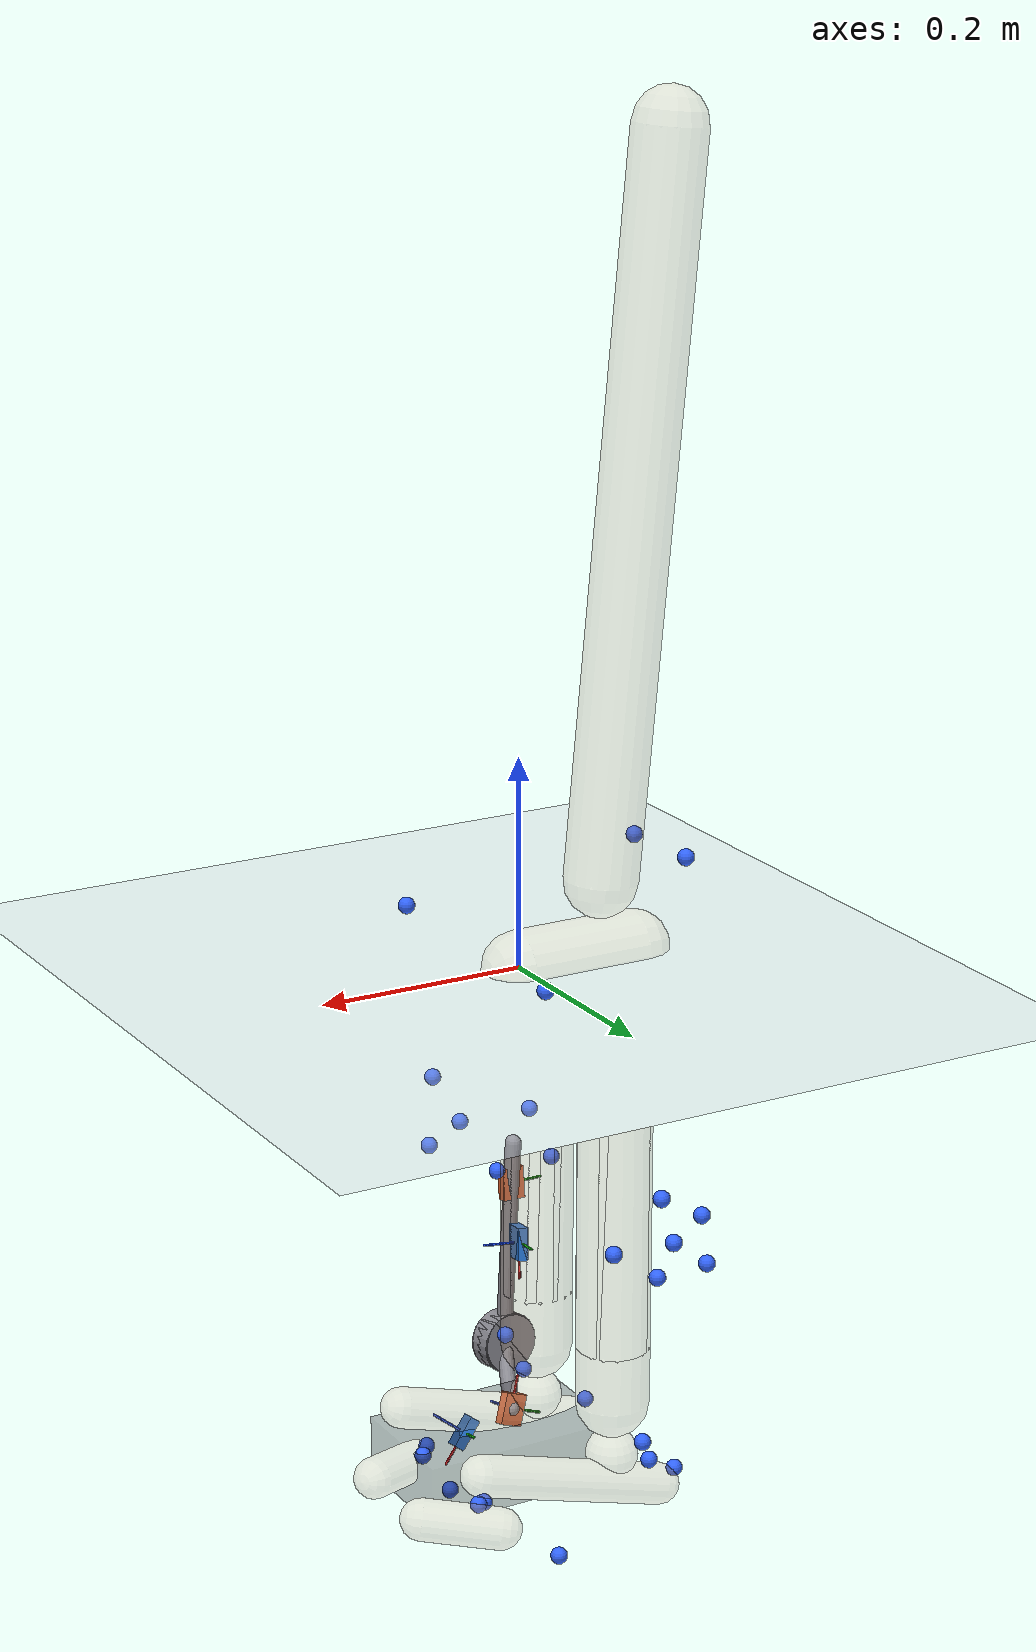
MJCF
<mujoco model="AB28">
  <compiler angle="radian" autolimits="true"/>
  <option timestep="0.005" gravity="0 0 -9.81"><flag contact="disable"/></option>
  <visual><global offwidth="1600" offheight="1200"/>
    <headlight ambient="0.55 0.55 0.55" diffuse="0.6 0.6 0.6"/></visual>
  <default><joint limited="false" damping="0"/><geom contype="0" conaffinity="0"/></default>
  <asset>
    <texture name="grid" type="2d" builtin="checker" rgb1="0.75 0.77 0.8" rgb2="0.85 0.87 0.9" width="512" height="512"/>
    <material name="grid" texture="grid" texrepeat="2 2" texuniform="true"/>
    <material name="skin" rgba="0.85 0.72 0.62 0.28"/>
  </asset>
  <worldbody>
    <light pos="0 0 4" dir="0 0 -1"/>
    <geom name="floor" type="plane" size="0 0 0.05" material="grid"/>
    <body name="pelvis" pos="0 0 0" quat="1 0 0 0">
      <joint name="pelvis_tx" type="slide" axis="1 0 0"/>
      <joint name="pelvis_ty" type="slide" axis="0 0 1"/>
      <joint name="pelvis_tz" type="slide" axis="0 -1 0"/>
      <joint name="pelvis_tilt" type="hinge" axis="0 -1 0"/>
      <joint name="pelvis_list" type="hinge" axis="1 0 0"/>
      <joint name="pelvis_rotation" type="hinge" axis="0 0 1"/>
      <inertial pos="-0.060459257 0 0" mass="10.3627" diaginertia="0.10362728 0.10362728 0.10362728"/>
      <geom type="capsule" fromto="0 0 0 -0.12091851 0 0" size="0.035" material="skin" mass="0"/>
      <site name="m_R_ASIS" pos="0.045494948 -0.13175383 0.027740392" size="0.008" rgba="0.2 0.4 1 1" group="2"/>
      <site name="m_L_ASIS" pos="0.046324617 0.12866539 0.028376879" size="0.008" rgba="0.2 0.4 1 1" group="2"/>
      <site name="m_L_PSIS" pos="-0.1499783 0.044557022 0.094452303" size="0.008" rgba="0.2 0.4 1 1" group="2"/>
      <site name="m_R_PSIS" pos="-0.14623649 -0.040033967 0.092877618" size="0.008" rgba="0.2 0.4 1 1" group="2"/>
      <body name="femur_r" pos="-0.060459257 -0.071405204 -0.056525557" quat="1 0 0 0">
        <joint name="hip_flexion_r" type="hinge" axis="0 -1 0"/>
        <joint name="hip_adduction_r" type="hinge" axis="1 0 0"/>
        <joint name="hip_rotation_r" type="hinge" axis="0 0 1"/>
        <inertial pos="0 0 -0.15340206" mass="8.18442" diaginertia="0.081844173 0.081844173 0.081844173"/>
        <geom type="capsule" fromto="0 0 0 0 0 -0.30680412" size="0.035" material="skin" mass="0"/>
        <site name="m_R_Thigh_Upper" pos="0.05776982 -0.1007557 -0.11153443" size="0.008" rgba="0.2 0.4 1 1" group="2"/>
        <site name="m_R_Thigh_Front" pos="0.082450817 -0.062730026 -0.16361164" size="0.008" rgba="0.2 0.4 1 1" group="2"/>
        <site name="m_R_Thigh_Rear" pos="0.032760071 -0.092161246 -0.15989025" size="0.008" rgba="0.2 0.4 1 1" group="2"/>
        <site name="m_R_Knee_Lat" pos="0.0043800552 -0.05269609 -0.37766919" size="0.008" rgba="0.2 0.4 1 1" group="2"/>
        <body name="tibia_r" pos="0 0 0" quat="1 0 0 0">
<geom name="gt_shank_axis_x" type="capsule" size="0.0012" fromto="0.02470 0.00950 -0.24910 0.02765 0.01607 -0.28335" rgba="1 0.1 0.1 1" contype="0" conaffinity="0" mass="0"/>
<geom name="gt_shank_axis_y" type="capsule" size="0.0012" fromto="0.02470 0.00950 -0.24910 0.03015 0.04337 -0.24214" rgba="0.1 0.8 0.1 1" contype="0" conaffinity="0" mass="0"/>
<geom name="gt_shank_axis_z" type="capsule" size="0.0012" fromto="0.02470 0.00950 -0.24910 0.05915 0.00358 -0.24727" rgba="0.1 0.3 1 1" contype="0" conaffinity="0" mass="0"/>
<geom name="exo_shank_axis_x" type="capsule" size="0.0012" fromto="-0.04013 -0.12007 -0.25032 -0.04116 -0.12578 -0.21580" rgba="1 0.1 0.1 1" contype="0" conaffinity="0" mass="0"/>
<geom name="exo_shank_axis_y" type="capsule" size="0.0012" fromto="-0.04013 -0.12007 -0.25032 -0.07504 -0.12220 -0.25172" rgba="0.1 0.8 0.1 1" contype="0" conaffinity="0" mass="0"/>
<geom name="exo_shank_axis_z" type="capsule" size="0.0012" fromto="-0.04013 -0.12007 -0.25032 -0.03780 -0.15453 -0.25596" rgba="0.1 0.3 1 1" contype="0" conaffinity="0" mass="0"/>
<geom name="encoder_shank" type="cylinder" size="0.03 0.012" fromto="-0.02892 -0.12932 -0.41961 -0.03108 -0.10548 -0.41779" rgba="0.55 0.55 0.58 1" contype="0" conaffinity="0" mass="0"/>
<geom name="strut_shank" type="capsule" size="0.008" fromto="-0.03000 -0.11740 -0.41870 -0.04266 -0.12073 -0.20822" rgba="0.55 0.55 0.58 1" contype="0" conaffinity="0" mass="0"/>
          <joint name="knee_r_translation1" type="slide" axis="1 0 0"/>
          <joint name="knee_r_translation2" type="slide" axis="0 0 1"/>
          <joint name="knee_angle_r" type="hinge" axis="0 -1 0"/>
          <inertial pos="0 0 -0.18179033" mass="3.26228" diaginertia="0.032622753 0.032622753 0.032622753"/>
          <geom type="capsule" fromto="0 0 0 0 0 -0.36358066" size="0.035" material="skin" mass="0"/>
          <site name="m_R_Shank_Upper" pos="-0.038563113 -0.081535494 -0.15673286" size="0.008" rgba="0.2 0.4 1 1" group="2"/>
          <site name="m_R_Shank_Front" pos="0.006359711 -0.065851534 -0.20740432" size="0.008" rgba="0.2 0.4 1 1" group="2"/>
          <site name="m_R_Shank_Rear" pos="-0.056847113 -0.070249825 -0.20714992" size="0.008" rgba="0.2 0.4 1 1" group="2"/>
          <site name="m_R_Ankle_Lat" pos="-0.012361262 -0.045905728 -0.41584314" size="0.008" rgba="0.2 0.4 1 1" group="2"/>
          <site name="gt_shank_imu" type="box" size="0.016 0.012 0.005" pos="0.0247 0.0095 -0.2491" quat="0.72532266 0.12686786 0.67652855 0.010986224" rgba="0.16 0.47 0.84 1" group="1"/>
          <site name="exo_shank_imu" type="box" size="0.016 0.012 0.005" pos="-0.040129 -0.120067 -0.250319" quat="0.43257155 0.54598076 -0.53146482 0.4820083" rgba="0.92 0.41 0.20 1" group="1"/>
          <body name="talus_r" pos="0 0 -0.41869224" quat="1 0 0 0">
            <joint name="ankle_angle_r" type="hinge" axis="-0.10501355 -0.97912632 -0.17402245"/>
            <inertial pos="0 0 0" mass="0.0879912" diaginertia="0.00087991241 0.00087991241 0.00087991241"/>
            <geom type="sphere" size="0.025" material="skin" mass="0"/>
            <body name="calcn_r" pos="-0.047487489 -0.0077117268 -0.040846836" quat="1 0 0 0">
<geom name="gt_foot_axis_x" type="capsule" size="0.0012" fromto="0.12560 0.00420 0.01630 0.14772 0.00818 -0.01053" rgba="1 0.1 0.1 1" contype="0" conaffinity="0" mass="0"/>
<geom name="gt_foot_axis_y" type="capsule" size="0.0012" fromto="0.12560 0.00420 0.01630 0.13262 0.03680 0.02693" rgba="0.1 0.8 0.1 1" contype="0" conaffinity="0" mass="0"/>
<geom name="gt_foot_axis_z" type="capsule" size="0.0012" fromto="0.12560 0.00420 0.01630 0.15180 -0.00790 0.03611" rgba="0.1 0.3 1 1" contype="0" conaffinity="0" mass="0"/>
<geom name="exo_foot_axis_x" type="capsule" size="0.0012" fromto="0.03626 -0.06086 -0.00941 0.02442 -0.06777 0.02280" rgba="1 0.1 0.1 1" contype="0" conaffinity="0" mass="0"/>
<geom name="exo_foot_axis_y" type="capsule" size="0.0012" fromto="0.03626 -0.06086 -0.00941 0.00349 -0.06193 -0.02167" rgba="0.1 0.8 0.1 1" contype="0" conaffinity="0" mass="0"/>
<geom name="exo_foot_axis_z" type="capsule" size="0.0012" fromto="0.03626 -0.06086 -0.00941 0.03966 -0.09515 -0.01551" rgba="0.1 0.3 1 1" contype="0" conaffinity="0" mass="0"/>
<geom name="encoder_foot" type="cylinder" size="0.03 0.012" fromto="0.01920 -0.12138 0.03938 0.01560 -0.09782 0.04222" rgba="0.55 0.55 0.58 1" contype="0" conaffinity="0" mass="0"/>
<geom name="strut_foot" type="capsule" size="0.008" fromto="0.01740 -0.10960 0.04080 0.03626 -0.06086 -0.00941" rgba="0.55 0.55 0.58 1" contype="0" conaffinity="0" mass="0"/>
<geom name="shoe" type="box" pos="0.09116 -0.00256 -0.01182" size="0.09965 0.06334 0.03000" rgba="0.15 0.15 0.18 0.35" contype="0" conaffinity="0" mass="0"/>
              <joint name="subtalar_angle_r" type="hinge" axis="0.78717961 0.12094949 0.60474746"/>
              <inertial pos="0.096134135 0 0.028840241" mass="1.09989" diaginertia="0.010998905 0.010998905 0.010998905"/>
              <geom type="capsule" fromto="0 0 0 0.19226827 0 0.057680481" size="0.02" material="skin" mass="0"/>
              <site name="m_R_Heel" pos="-0.01549349 -0.004412373 0.013531303" size="0.008" rgba="0.2 0.4 1 1" group="2"/>
              <site name="m_R_Toe_Lat" pos="0.13555577 -0.054048505 -0.02182151" size="0.008" rgba="0.2 0.4 1 1" group="2"/>
              <site name="m_R_Toe_Med" pos="0.16766697 0.052636777 -0.012152741" size="0.008" rgba="0.2 0.4 1 1" group="2"/>
              <site name="m_R_Toe_Tip" pos="0.18080904 0.022724583 0.013912831" size="0.008" rgba="0.2 0.4 1 1" group="2"/>
              <site name="gt_foot_imu" type="box" size="0.016 0.012 0.005" pos="0.1256 0.0042 0.0163" quat="0.88451248 0.18352175 0.42820238 -0.024498113" rgba="0.16 0.47 0.84 1" group="1"/>
              <site name="exo_foot_imu" type="box" size="0.016 0.012 0.005" pos="0.036255 -0.060856 -0.009408" quat="-0.33795701 -0.46557533 0.60866976 -0.54639345" rgba="0.92 0.41 0.20 1" group="1"/>
              <body name="toes_r" pos="0.17188783 -0.0010382487 -0.0019226827" quat="1 0 0 0">
                <joint name="mtp_angle_r" type="hinge" axis="-0.5809544 -0.81393611 0"/>
                <inertial pos="0.033262411 0.016823474 0.0057680481" mass="0.190589" diaginertia="0.0019058903 0.0019058903 0.0019058903"/>
                <geom type="capsule" fromto="0 0 0 0.066524822 0.033646947 0.011536096" size="0.02" material="skin" mass="0"/>
              </body>
            </body>
          </body>
        </body>
      </body>
      <body name="femur_l" pos="-0.060459257 0.071405204 -0.056525557" quat="1 0 0 0">
        <joint name="hip_flexion_l" type="hinge" axis="0 -1 0"/>
        <joint name="hip_adduction_l" type="hinge" axis="-1 0 0"/>
        <joint name="hip_rotation_l" type="hinge" axis="0 0 -1"/>
        <inertial pos="0 0 -0.15340206" mass="8.18442" diaginertia="0.081844173 0.081844173 0.081844173"/>
        <geom type="capsule" fromto="0 0 0 0 0 -0.30680412" size="0.035" material="skin" mass="0"/>
        <site name="m_L_Thigh_Upper" pos="0.014077366 0.10535352 -0.11509605" size="0.008" rgba="0.2 0.4 1 1" group="2"/>
        <site name="m_L_Thigh_Front" pos="0.04878159 0.081123076 -0.17137662" size="0.008" rgba="0.2 0.4 1 1" group="2"/>
        <site name="m_L_Thigh_Rear" pos="-0.010205452 0.088172336 -0.17017062" size="0.008" rgba="0.2 0.4 1 1" group="2"/>
        <site name="m_L_Knee_Lat" pos="0.0015345106 0.057933929 -0.38101771" size="0.008" rgba="0.2 0.4 1 1" group="2"/>
        <body name="tibia_l" pos="0 0 0" quat="1 0 0 0">
          <joint name="knee_l_translation1" type="slide" axis="1 0 0"/>
          <joint name="knee_l_translation2" type="slide" axis="0 0 1"/>
          <joint name="knee_angle_l" type="hinge" axis="0 -1 0"/>
          <inertial pos="0 0 -0.18179033" mass="3.26228" diaginertia="0.032622753 0.032622753 0.032622753"/>
          <geom type="capsule" fromto="0 0 0 0 0 -0.36358066" size="0.035" material="skin" mass="0"/>
          <site name="m_L_Shank_Upper" pos="-0.048947295 0.073997058 -0.15687193" size="0.008" rgba="0.2 0.4 1 1" group="2"/>
          <site name="m_L_Shank_Front" pos="-0.0060465803 0.067662956 -0.21187034" size="0.008" rgba="0.2 0.4 1 1" group="2"/>
          <site name="m_L_Shank_Rear" pos="-0.062789575 0.062421382 -0.21261774" size="0.008" rgba="0.2 0.4 1 1" group="2"/>
          <site name="m_L_Ankle_Lat" pos="-0.011989957 0.047780272 -0.40711113" size="0.008" rgba="0.2 0.4 1 1" group="2"/>
          <body name="talus_l" pos="0 0 -0.41869224" quat="1 0 0 0">
            <joint name="ankle_angle_l" type="hinge" axis="0.10501355 -0.97912632 0.17402245"/>
            <inertial pos="0 0 0" mass="0.0879912" diaginertia="0.00087991241 0.00087991241 0.00087991241"/>
            <geom type="sphere" size="0.025" material="skin" mass="0"/>
            <body name="calcn_l" pos="-0.047487489 0.0077117268 -0.040846836" quat="1 0 0 0">
              <joint name="subtalar_angle_l" type="hinge" axis="-0.78717961 0.12094949 -0.60474746"/>
              <inertial pos="0.096134135 0 0.028840241" mass="1.09989" diaginertia="0.010998905 0.010998905 0.010998905"/>
              <geom type="capsule" fromto="0 0 0 0.19226827 0 0.057680481" size="0.02" material="skin" mass="0"/>
              <site name="m_L_Heel" pos="-0.016715083 0.001319812 0.012914354" size="0.008" rgba="0.2 0.4 1 1" group="2"/>
              <site name="m_L_Toe_Lat" pos="0.14239711 0.057466211 -0.010759494" size="0.008" rgba="0.2 0.4 1 1" group="2"/>
              <site name="m_L_Toe_Med" pos="0.16497557 -0.04415497 0.0026397667" size="0.008" rgba="0.2 0.4 1 1" group="2"/>
              <site name="m_L_Toe_Tip" pos="0.18187932 -0.024040832 0.014190985" size="0.008" rgba="0.2 0.4 1 1" group="2"/>
              <body name="toes_l" pos="0.17188783 0.0010382487 -0.0019226827" quat="1 0 0 0">
                <joint name="mtp_angle_l" type="hinge" axis="0.5809544 -0.81393611 0"/>
                <inertial pos="0.033262411 -0.016823474 0.0057680481" mass="0.190589" diaginertia="0.0019058903 0.0019058903 0.0019058903"/>
                <geom type="capsule" fromto="0 0 0 0.066524822 -0.033646947 0.011536096" size="0.02" material="skin" mass="0"/>
              </body>
            </body>
          </body>
        </body>
      </body>
      <body name="torso" pos="-0.086113821 0 0.0696949" quat="1 0 0 0">
        <joint name="lumbar_extension" type="hinge" axis="0 -1 0"/>
        <joint name="lumbar_bending" type="hinge" axis="1 0 0"/>
        <joint name="lumbar_rotation" type="hinge" axis="0 0 1"/>
        <inertial pos="-0.032027103 0 0.34162243" mass="30.1252" diaginertia="0.30125209 0.30125209 0.30125209"/>
        <geom type="capsule" fromto="0 0 0 -0.064054205 0 0.68324485" size="0.035" material="skin" mass="0"/>
      </body>
    </body>
  </worldbody>
  <sensor>
<accelerometer name="gt_foot_imu_acc" site="gt_foot_imu"/>
<gyro name="gt_foot_imu_gyr" site="gt_foot_imu"/>
<accelerometer name="exo_foot_imu_acc" site="exo_foot_imu"/>
<gyro name="exo_foot_imu_gyr" site="exo_foot_imu"/>
<accelerometer name="gt_shank_imu_acc" site="gt_shank_imu"/>
<gyro name="gt_shank_imu_gyr" site="gt_shank_imu"/>
<accelerometer name="exo_shank_imu_acc" site="exo_shank_imu"/>
<gyro name="exo_shank_imu_gyr" site="exo_shank_imu"/>
</sensor>
</mujoco>
